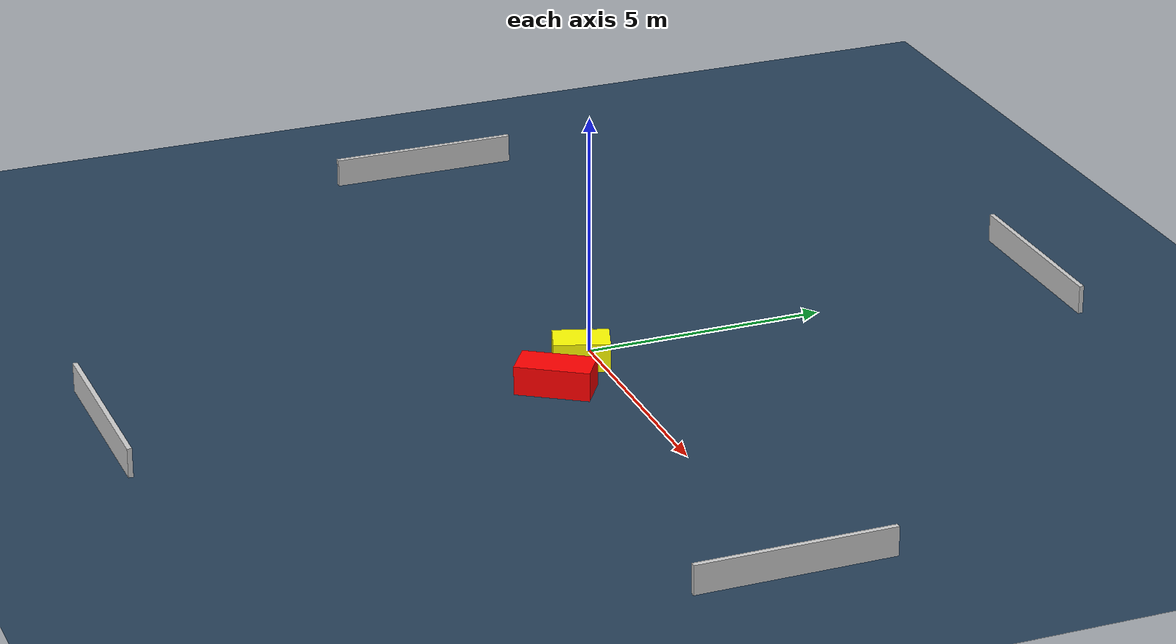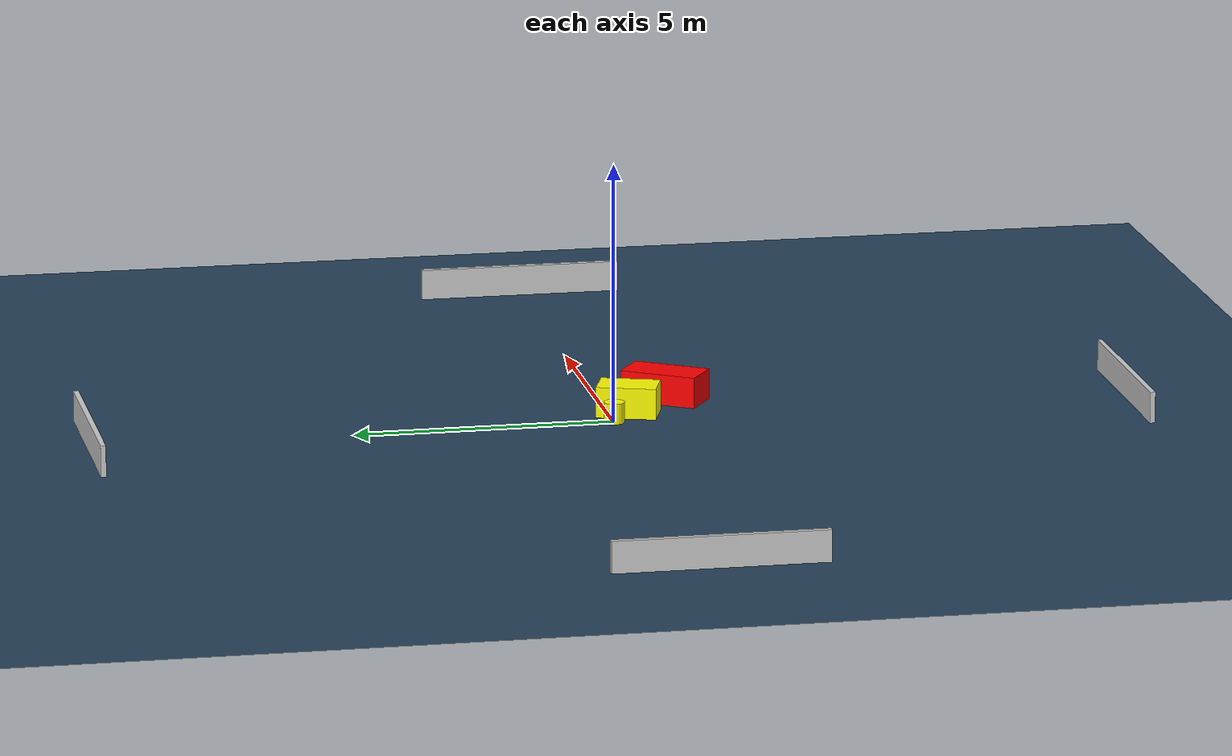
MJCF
<?xml version="1.0" ?>
<mujoco model="generated_environment">
  <option timestep="0.01" integrator="RK4" cone="elliptic"/>
  <default>
    <geom density="1"/>
  </default>
  <asset>
    <texture builtin="gradient" height="3072" name="skybox" rgb1="0.3 0.5 0.7" rgb2="0 0 0" type="skybox" width="512"/>
    <texture builtin="checker" height="300" name="groundplane" rgb1="0.2 0.3 0.4" rgb2="0.1 0.2 0.3" type="2d" width="300"/>
    <material name="groundplane" reflectance="0.2" texrepeat="5 5" texture="groundplane"/>
  </asset>
  <worldbody>
    <light dir="0 0 -1" directional="true" pos="0 0 1.5"/>
    <geom condim="3" friction="0.5 0.005 0.001" material="groundplane" name="floor" pos="0 0 0" size="0 0 0.05" type="plane"/>
    <body name="walls">
      <geom name="wall_1" condim="4" pos="-10.0 0.0 0.3" rgba="0.800000011920929 0.800000011920929 0.800000011920929 1.0" size="0.05 2.0 0.3" type="box"/>
      <geom name="wall_2" condim="4" pos="10.0 0.0 0.3" rgba="0.800000011920929 0.800000011920929 0.800000011920929 1.0" size="0.05 2.0 0.3" type="box"/>
      <geom name="wall_3" condim="4" pos="0.0 -10.0 0.3" rgba="0.800000011920929 0.800000011920929 0.800000011920929 1.0" size="2.0 0.05 0.3" type="box"/>
      <geom name="wall_4" condim="4" pos="0.0 10.0 0.3" rgba="0.800000011920929 0.800000011920929 0.800000011920929 1.0" size="2.0 0.05 0.3" type="box"/>
    </body>
    <body name="robot">
      <joint name="joint_x" type="slide" pos="0 0 0" axis="1 0 0"/>
      <joint name="joint_y" type="slide" pos="0 0 0" axis="0 1 0"/>
      <geom name="robot" type="cylinder" pos="0.0 0.0 0.2" size="0.2 0.2 0.0" mass="5.0" friction="1.0 0.005 0.0001" condim="4" rgba="1.0 1.0 0.0 1.0"/>
    </body>
    <body name="obstacle_1_movable">
      <geom name="obstacle_1_movable" condim="4" pos="0.5263558281691022 -0.3791140053729551 0.3" euler="0 0 341.2256789420523" friction="0.0 0.005 0.001" rgba="1.0 1.0 0.0 1.0" size="0.3619775720312879 0.5712478258363605 0.3" type="box" mass="0.1"/>
      <joint type="free"/>
    </body>
    <body name="obstacle_2_static">
      <geom name="obstacle_2_static" condim="4" pos="1.4104660851500603 -1.2622470589730288 0.3" euler="0 0 56.49682712462524" friction="0.0 0.005 0.001" rgba="1.0 0.0 0.0 1.0" size="0.7598338696844669 0.38837545164160014 0.3" type="box"/>
    </body>
  </worldbody>
  <actuator>
    <motor name="actuator_x" joint="joint_x" gear="1" ctrlrange="-1 1"/>
    <motor name="actuator_y" joint="joint_y" gear="1" ctrlrange="-1 1"/>
  </actuator>
</mujoco>
